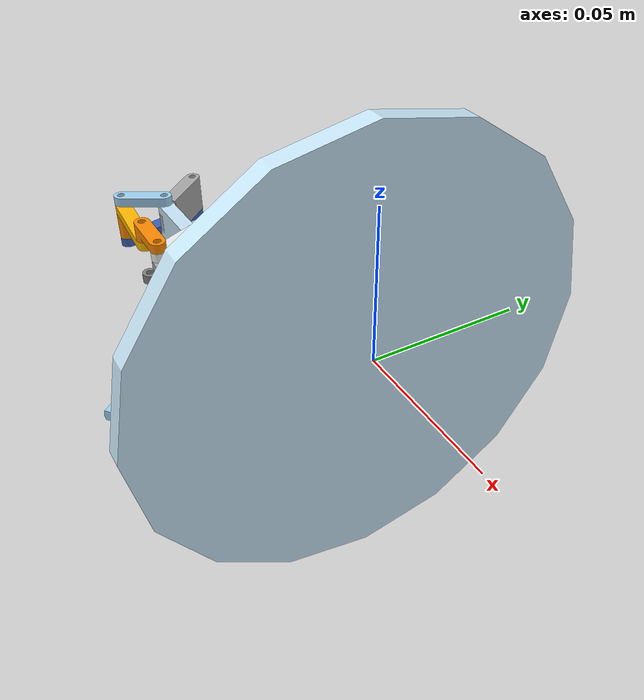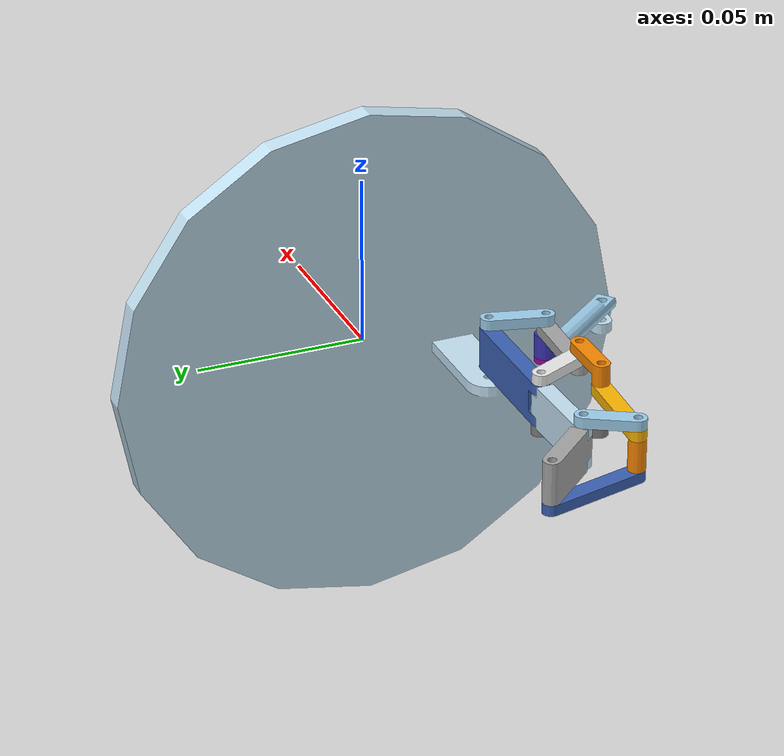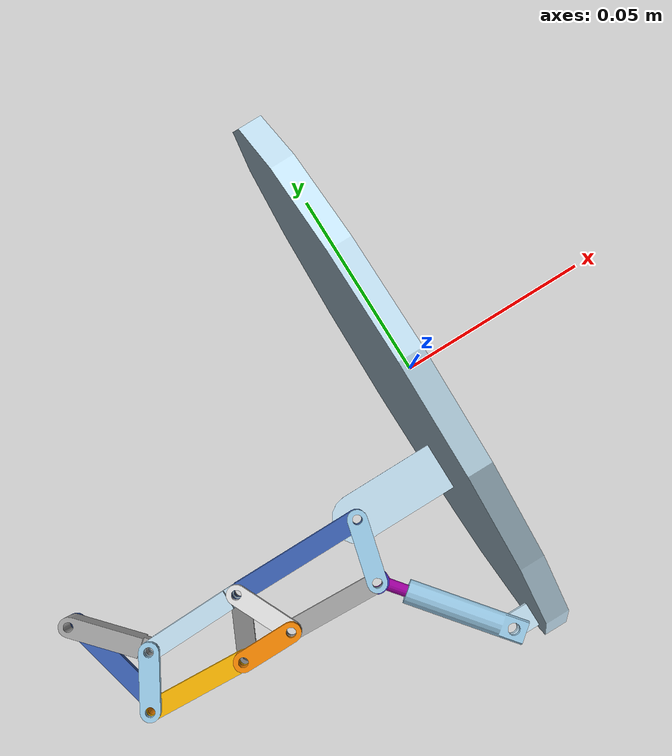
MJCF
<mujoco model="assembly_2">
  <compiler angle="radian" meshdir="meshes/" />

    <asset>
        <mesh name="mesh_75" file="75.stl"/>
        <mesh name="mesh_114" file="114.stl"/>
        <mesh name="mesh_118" file="118.stl"/>
        <mesh name="mesh_67" file="67.stl"/>
        <mesh name="mesh_59" file="59.stl"/>
        <mesh name="mesh_110" file="110.stl"/>
        <mesh name="mesh_91" file="91.stl"/>
        <mesh name="mesh_106" file="106.stl"/>
        <mesh name="mesh_79" file="79.stl"/>
        <mesh name="mesh_95" file="95.stl"/>
        <mesh name="mesh_87" file="87.stl"/>
        <mesh name="mesh_71" file="71.stl"/>
        <mesh name="mesh_63" file="63.stl"/>
        <mesh name="mesh_83" file="83.stl"/>
        <mesh name="mesh_122" file="122.stl"/>
        <mesh name="mesh_102" file="102.stl"/>
    </asset>

  <worldbody>
    <body name="Part 13" pos="0 0 0">
            <inertial pos="-0.00339204 0.000372157 -2.03931e-06" mass="0.000117271" fullinertia="3.37885e-07 1.69104e-07 1.70696e-07 6.96234e-10 -7.07424e-12 6.99477e-12"/>
            <geom type="mesh" mesh="mesh_67" pos="-0.0297178 -0.0415285 -0.0015875" euler="3.14159 0 0" rgba="0.768627 0.886275 0.952941 1"/>

    <body name="Part 3" pos="-0.03175 -0.0254 0.00158743" quat="1.32679e-06 -1 0 0">
      <inertial pos="-0.0165991 0 -0.00635" quat="0.5 0.5 0.5 0.5" mass="2.26781e-06" diaginertia="2.74421e-10 2.47732e-10 3.65735e-11"/>
      <geom type="mesh" mesh="mesh_79" pos="0.00203219 0.0161285 -0.0127" rgba="0.231373 0.380392 0.705882 1"/>

      <joint name="Revolute 15_0" pos="0 0 0" axis="0 0 1" damping="0.0000001" frictionloss="0" limited="true" range="0 1.57"/>
      <body name="Part 1_1" pos="0 0 -0.0127" quat="0.982685 0 0 0.185286">
        <inertial pos="0.00101609 0.00806424 -0.0015875" quat="0.705719 0.705719 -0.044285 -0.044285" mass="2.94369e-07" diaginertia="9.36537e-12 9.77276e-12 1e-12"/>
        <geom type="mesh" mesh="mesh_110" pos="0.00203219 0.0161285 -0.003175" rgba="0.615686 0.811765 0.929412 1"/>
        <site name="loop_side_B" pos="0.00203 0.0162 0.0103124" size="0.002" rgba="0 1 0 0"/>
        <!-- geometry  is rotated  (use inertial quat)-->
        <joint name="Revolute 1_0" pos="0 0 0" axis="0 0 1" damping="0.0000001" frictionloss="0"/>
      </body>
      <body name="Part 5" pos="-0.034925 0 -0.003175" quat="0.999927 0 0 -0.0121196">
        <inertial pos="-0.0128069 0 -0.003175" quat="0.5 0.5 0.5 0.5" mass="1.55298e-06" diaginertia="1.03609e-10 8.6119e-11 2.42563e-11"/>
        <geom type="mesh" mesh="mesh_71" pos="0.0369572 0.0161285 -0.009525" rgba="0.768627 0.886275 0.952941 1"/>
        <joint name="Revolute 3_0" pos="0 0 0" axis="0 0 1" damping="0.0000001" frictionloss="0" limited="true" range="0 1.57"/>
        <body name="Part 9" pos="-0.0256137 0 -0.009525" quat="0.418094 0 0 -0.908404">
          <inertial pos="-0.0022695 -0.00693573 -0.0015875" quat="0.698286 0.698286 -0.111341 -0.111341" mass="2.67582e-07" diaginertia="7.22048e-12 7.59277e-12 1e-12"/>
          <joint name="Revolute 13_0" pos="0 0 0" axis="0 0 1" damping="0.0000001" frictionloss="0"/>
          <geom type="mesh" mesh="mesh_102" pos="0.0580319 0.00225701 -0.003175" rgba="0.615686 0.811765 0.929412 1"/>
          <site name="loop_side_G" pos="-0.00456 -0.01377 0" size="0.002" rgba="0 1 0 0"/>
        </body>
        <body name="Part 10" pos="-0.0256137 0 0" quat="0.908403 0 0 0.418096">
          <inertial pos="-0.0113644 0 -0.003175" quat="0.5 0.5 0.5 0.5" mass="1.37134e-06" diaginertia="7.4567e-11 6.02994e-11 2.02956e-11"/>
          <geom type="mesh" mesh="mesh_114" pos="0.0625709 0.0161285 -0.009525" rgba="0.647059 0.647059 0.647059 1"/>
          <joint name="Revolute 7_0" pos="0 0 0" axis="0 0 -1" damping="0.0000001" frictionloss="0" limited="true" range="-0.708 0.862"/>
          <body name="Part 11" pos="-0.0210296 0 0.003175" quat="1 0 0 0">
            <inertial pos="0.0127843 0.00693573 0.0015875" quat="0.361641 0.361641 0.607631 0.607631" mass="5.01352e-07" diaginertia="4.24201e-11 4.30987e-11 1.52104e-12"/>
            <geom type="mesh" mesh="mesh_118" pos="0.0836005 0.0161285 0" rgba="0.231373 0.380392 0.705882 1"/>
            <joint name="Revolute 10_0" pos="0 0 0" axis="0 0 -1" damping="0.0000001" frictionloss="0"/>
            <site name="loop_side_H" pos="0.02557 0.01391 -0.0127" size="0.002" rgba="0 0 1 0"/>
          </body>
        </body>
      </body>
      <body name="Part 4" pos="-0.034925 0 -0.0127" quat="0.931492 0 0 0.363761">
        <inertial pos="0.00749939 0.00308099 -0.0015875" quat="0.393697 0.393697 0.58737 0.58737" mass="2.93711e-07" diaginertia="9.308e-12 9.71452e-12 1e-12"/>
        <geom type="mesh" mesh="mesh_87" pos="0.0369572 0.0161285 -0.003175" rgba="0.917647 0.917647 0.917647 1"/>
        <joint name="Revolute 6_0" pos="0 0 0" axis="0 0 -1" damping="0.0000001" frictionloss="0"/>
        <body name="Part 2_1" pos="0.0149988 0.00616197 0" quat="0.84553 0 0 -0.533929">
          <inertial pos="0.0109792 0.00498325 0.0015875" quat="0.382981 0.382981 0.594412 0.594412" mass="4.21116e-07" diaginertia="2.56425e-11 2.6216e-11 1.281e-12"/>
          <geom type="mesh" mesh="mesh_106" pos="0.0219584 0.0099665 0" rgba="0.647059 0.647059 0.647059 1"/>
          <site name="loop_side_C" pos="0.021382863 0.0101479076 0" size="0.002" rgba="0 0 1 0"/>
          <joint name="Revolute 4_0" pos="0 0 0" axis="0 0 1" damping="0.0000001" frictionloss="0"/>
        </body>
        <body name="Part 6" pos="0.0149988 0.00616197 -0.003175" quat="1 0 0 0">
          <inertial pos="-0.00583411 0.00540861 -0.00107954" quat="0.648047 0.648047 0.282905 0.282905" mass="3.01674e-07" diaginertia="8.69076e-12 8.69255e-12 1.32601e-12"/>
          <joint name="Revolute 5_0" pos="0 0 0" axis="0 0 1" damping="0.0000001" frictionloss="0"/>
          <geom type="mesh" mesh="mesh_63" pos="0.0219584 0.0099665 -0.003175" rgba="0.972549 0.529412 0.00392157 1"/>
          <site name="loop_side_D" pos="-0.0100584 0.0093218 0" size="0.002" rgba="0 0 1 0"/>

        </body>
      </body>
      <body name="Part 7" pos="-0.034925 0 0" quat="0.931492 0 0 0.363761">
        <inertial pos="0.00246993 0.00774363 0.0015875" quat="0.698697 0.698697 -0.10873 -0.10873" mass="2.94369e-07" diaginertia="9.36537e-12 9.77276e-12 1e-12"/>
        <joint name="Revolute 8_0" pos="0 0 0" axis="0 0 -1" damping="0.0000001" frictionloss="0"/>
        <geom type="mesh" mesh="mesh_83" pos="0.0369572 0.0161285 0" rgba="0.498039 0.498039 0.498039 1"/>
        <body name="Part 14_1" pos="0.00493986 0.0154873 0" quat="1.2345e-06 -0.930439 0.366448 -4.86201e-07">
          <inertial pos="-0.00721005 0.000182644 0.000890217" quat="0.477309 0.53647 0.521705 0.460652" mass="7.42158e-07" diaginertia="1.06372e-10 9.99446e-11 1.03757e-11"/>
          <joint name="Revolute 12_0" pos="0 0 0" axis="0 0 -1" damping="0.0000001" frictionloss="0"/>
          <geom type="mesh" mesh="mesh_59" pos="0.0320173 0.000641214 0.009525" rgba="0.972549 0.529412 0.00392157 0"/>
          <site name="loop_side_E" pos="0 0 0.015875" size="0.002" rgba="0 1 0 0"/>
          <site name="loop_side_F" pos="-0.026 0.001465 0.0127" size="0.002" rgba="1 0 0 0"/>

          <body name="Part 8" pos="0 0 0.009525" euler="3.14159 0 0">
              <inertial pos="-0.0130073 -0.000807897 -0.0015875" mass="4.52574e-07" diaginertia="1.49102e-12 3.14286e-11 3.21592e-11"/>
              <geom type="mesh" mesh="mesh_122" pos="0.0320173 0.000641214 -0.003175" rgba="0.980392 0.713726 0.00392157 1"/>

              <body name="Part 14" pos="-0.0260146 -0.00161579 0" euler="-3.14159 0 0">
                  <inertial pos="0 0 -0.0047625" mass="1.44792e-07" diaginertia="1.38661e-12 1.38661e-12 5.83836e-13"/>
                  <geom type="mesh" mesh="mesh_59" pos="0.0320173 0.000641214 0" rgba="0.972549 0.529412 0.00392157 1"/>
              </body>
          </body>

        </body>
      </body>
    </body>
    <body name="Part 1" pos="-0.0127 -0.06985 0.00158731" quat="-0.234622 -0.234621 0.667046 0.66705">
      <inertial pos="0 0.0015875 0.0134123" mass="7.2074e-07" diaginertia="5.7618e-11 5.79027e-11 4.26698e-12"/>
      <geom type="mesh" mesh="mesh_75" pos="2.1684e-19 0.0015875 -0.003175" rgba="0.615686 0.811765 0.929412 1"/>

      <joint name="Revolute 16_0" pos="0 0 0" axis="0 -1 0" damping="0.0000001" frictionloss="0"/>
      <body name="Part 2" pos="0 0.0015875 0.00821442" quat="1 0 0 0">
        <inertial pos="0 0 0.0152573" mass="2.39969e-07" diaginertia="1.91942e-11 1.93075e-11 1e-12"/>
        <joint name="Slider 1_0" pos="0 0 0" axis="0 0 -1" type="slide" range="-.02 0" actuatorfrcrange="-1 1" damping="0.0000001" frictionloss="0"/>
        <geom type="mesh" mesh="mesh_91" pos="0 -1.94413e-19 -0.03175" rgba="0.647059 0. 0.647059 1"/>

        <body name="Part 3_1" pos="0 0.00079375 0.028575" quat="-0.146743 1.50713e-06 -0.989175 -1.50713e-06">
          <inertial pos="0 0.00357187 0" mass="1.69678e-07" diaginertia="1.25612e-12 1.06904e-12 1.25612e-12"/>
          <joint name="Revolute 18_0" pos="0 0 0" axis="0 -1 0" damping="0.0000001" frictionloss="0"/>
          <geom type="mesh" mesh="mesh_95" pos="-4.11997e-18 0.0079375 -0.060325" rgba="0.231373 0.2 0.705882 1"/>
          <site name="loop_side_A" pos="0 0 0" size="0.002" rgba="1 0 0 0"/>
        </body>
      </body>
    </body>
    </body>
  </worldbody>
  <equality>
        <connect name="close_gripper_loop" site1="loop_side_A" site2="loop_side_B" solimp="0.99 0.99 0.001" solref="0.005 1"/>
    </equality>
     <equality>
        <connect name="close_gripper_loop2" site1="loop_side_A" site2="loop_side_C" solimp="0.99 0.99 0.001" solref="0.005 1"/>
    </equality>
    <equality>
        <connect name="close_gripper_loop3" site1="loop_side_D" site2="loop_side_E"/>
    </equality>
    <equality>
        <connect name="close_gripper_loop4" site1="loop_side_F" site2="loop_side_G"/>
    </equality>
    <equality>
        <connect name="close_gripper_loop5" site1="loop_side_G" site2="loop_side_H"/>
    </equality> -->
    <actuator>
        <position name="gripper_servo" joint="Slider 1_0" kp="0.005" ctrlrange="-0.02 0" forcerange="-0.0005 0.0050"/>
    </actuator>
</mujoco>
